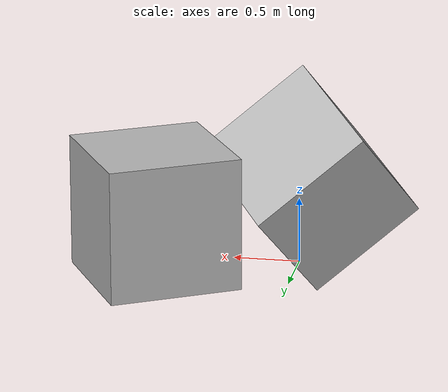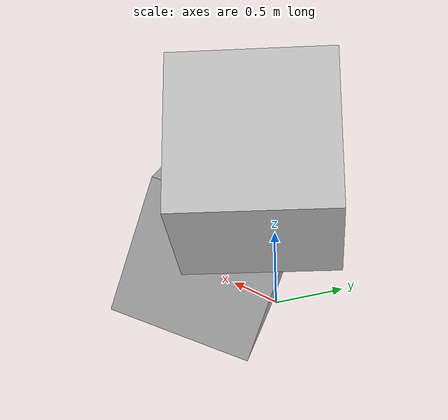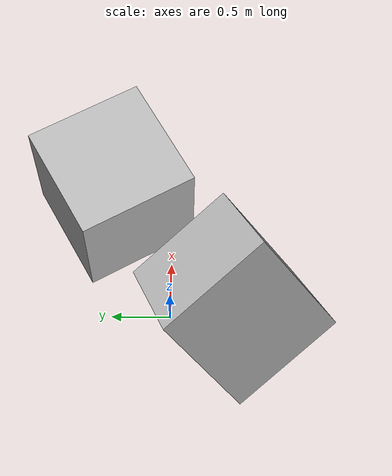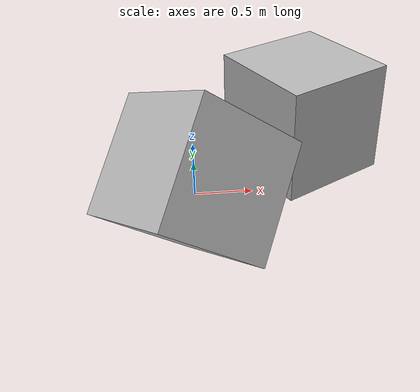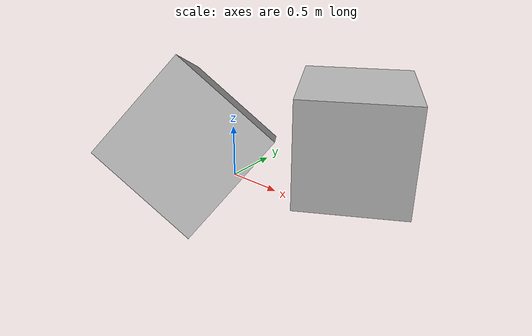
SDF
<?xml version='1.0'?>
<sdf version='1.6'>
		<model name="testflexible">
			<self_collide>true</self_collide>
			<pose>0.0 0.0 0.0 0.0 0.0 0.0</pose>
			<!-- Start of parts of the pmodel testflexible -->
				<!-- Start of declarations for part "testflexible::TLB" -->
					<!-- Start of parts of part "testflexible::TLB" -->
					<!-- End of parts of part "testflexible::TLB" -->

					<!-- Start of links of part "testflexible::TLB" -->
					<!-- link full name is testflexible::TLB::linkB -->
					<link name="1-linkB">
							<pose>0.0 -0.5 0.5 1.0471999645233154 -0.785398006439209 1.0471999645233154</pose>
							<inertial>
								<pose>0.0 0.0 0.0 0.0 0.0 0.0</pose>
								<inertia>
									<ixx>1.0</ixx>
									<ixy>0.0</ixy>
									<ixz>0.0</ixz>
									<iyy>1.0</iyy>
									<iyz>0.0</iyz>
									<izz>1.0</izz>
								</inertia>
								<mass>1.0</mass>
							</inertial>
							<!-- body full name is testflexible::TLB::linkB::bodyB -->
							<collision name="1--bodyB">
								<laser_retro>0.0</laser_retro>
								<pose>0.0 0.0 0.0 0.0 0.0 0.0</pose>
								<geometry>
									<box>
										<size>1.0 1.0 1.0</size>
									</box>
								</geometry>
								<surface>
									<bounce>
										<restitution_coefficient>0.0</restitution_coefficient>
										<threshold>100000.0</threshold>
									</bounce>
									<friction>
										<ode>
											<mu>1.0</mu>
											<mu2>1.0</mu2>
											<fdir1>0.0 0.0 0.0</fdir1>
											<slip1>0.0</slip1>
											<slip2>0.0</slip2>
										</ode>
										<torsional>
											<coefficient>1.0</coefficient>
											<surface_radius>0.0</surface_radius>
										</torsional>
									</friction>
								</surface>
							</collision>
							<visual name="1--bodyB">
								<laser_retro>0.0</laser_retro>
								<pose>0.0 0.0 0.0 0.0 0.0 0.0</pose>
								<geometry>
									<box>
										<size>1.0 1.0 1.0</size>
									</box>
								</geometry>
								<surface>
									<bounce>
										<restitution_coefficient>0.0</restitution_coefficient>
										<threshold>100000.0</threshold>
									</bounce>
									<friction>
										<ode>
											<mu>1.0</mu>
											<mu2>1.0</mu2>
											<fdir1>0.0 0.0 0.0</fdir1>
											<slip1>0.0</slip1>
											<slip2>0.0</slip2>
										</ode>
										<torsional>
											<coefficient>1.0</coefficient>
											<surface_radius>0.0</surface_radius>
										</torsional>
									</friction>
								</surface>
							</visual>
					</link>
					<!-- End of links of part "testflexible::TLB" -->

					<!-- Start of joints of part "testflexible::TLB" -->
					<!-- End of joints of part "testflexible::TLB" -->

					<!-- Start of fixed connections of part "testflexible::TLB" -->

					<!-- End of fixed connections of part "testflexible::TLB" -->
				<!-- End of declarations for part "testflexible::TLB" -->
				<!-- Start of declarations for part "testflexible::TLA" -->
					<!-- Start of parts of part "testflexible::TLA" -->
					<!-- End of parts of part "testflexible::TLA" -->

					<!-- Start of links of part "testflexible::TLA" -->
					<!-- link full name is testflexible::TLA::linkA -->
					<link name="2-linkA">
							<pose>1.0 0.5 0.5 1.5707999467849731 3.141590118408203 -1.0471999645233154</pose>
							<inertial>
								<pose>0.0 0.0 0.0 0.0 0.0 0.0</pose>
								<inertia>
									<ixx>1.0</ixx>
									<ixy>0.0</ixy>
									<ixz>0.0</ixz>
									<iyy>1.0</iyy>
									<iyz>0.0</iyz>
									<izz>1.0</izz>
								</inertia>
								<mass>1.0</mass>
							</inertial>
							<!-- body full name is testflexible::TLA::linkA::bodyA -->
							<collision name="2--bodyA">
								<laser_retro>0.0</laser_retro>
								<pose>0.0 0.0 0.0 0.0 0.0 0.0</pose>
								<geometry>
									<box>
										<size>1.0 1.0 1.0</size>
									</box>
								</geometry>
								<surface>
									<bounce>
										<restitution_coefficient>0.0</restitution_coefficient>
										<threshold>100000.0</threshold>
									</bounce>
									<friction>
										<ode>
											<mu>1.0</mu>
											<mu2>1.0</mu2>
											<fdir1>0.0 0.0 0.0</fdir1>
											<slip1>0.0</slip1>
											<slip2>0.0</slip2>
										</ode>
										<torsional>
											<coefficient>1.0</coefficient>
											<surface_radius>0.0</surface_radius>
										</torsional>
									</friction>
								</surface>
							</collision>
							<visual name="2--bodyA">
								<laser_retro>0.0</laser_retro>
								<pose>0.0 0.0 0.0 0.0 0.0 0.0</pose>
								<geometry>
									<box>
										<size>1.0 1.0 1.0</size>
									</box>
								</geometry>
								<surface>
									<bounce>
										<restitution_coefficient>0.0</restitution_coefficient>
										<threshold>100000.0</threshold>
									</bounce>
									<friction>
										<ode>
											<mu>1.0</mu>
											<mu2>1.0</mu2>
											<fdir1>0.0 0.0 0.0</fdir1>
											<slip1>0.0</slip1>
											<slip2>0.0</slip2>
										</ode>
										<torsional>
											<coefficient>1.0</coefficient>
											<surface_radius>0.0</surface_radius>
										</torsional>
									</friction>
								</surface>
							</visual>
					</link>
					<!-- End of links of part "testflexible::TLA" -->

					<!-- Start of joints of part "testflexible::TLA" -->
					<!-- Full name of joint: testflexible::TLA::linkA::barAB_joint from testflexible::TLA::linkA to testflexible::TLB::linkB-->
					<joint name="3-barAB_joint" type="revolute">
						<pose>1.3194802449309406 -0.7133449413870152 0.010805127438912598 1.4116393602331174 -0.1271754252421001 -0.9054183365313953</pose>
						<parent>2-linkA</parent>
						<child>1-linkB</child>
						<!-- WARNING: The SDF generator relies on annotations of the joint 3-barAB_joint to specify in SDF aspects of the joint that are
							 accounted for in the equations. -->
						<axis>
							<xyz>0 0 1</xyz>
						</axis>
					</joint>
					<!-- End of joints of part "testflexible::TLA" -->

					<!-- Start of fixed connections of part "testflexible::TLA" -->

					<!-- End of fixed connections of part "testflexible::TLA" -->
				<!-- End of declarations for part "testflexible::TLA" -->
			<!-- End of parts of the pmodel testflexible -->

			<!-- Start of links of the pmodel testflexible -->
			<!-- End of links of the pmodel testflexible -->

			<!-- Start of joints of the pmodel testflexible -->
			<!-- End of joints of the pmodel testflexible -->

			<!-- Start of fixed connections of the pmodel testflexible -->
			<!-- End of fixed connections of the pmodel testflexible -->
		</model>
</sdf>
